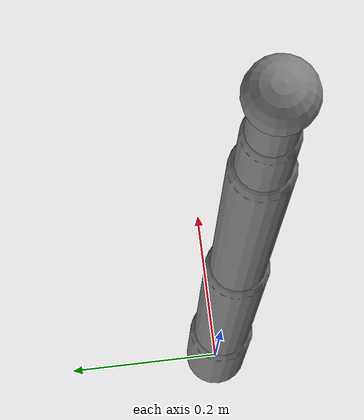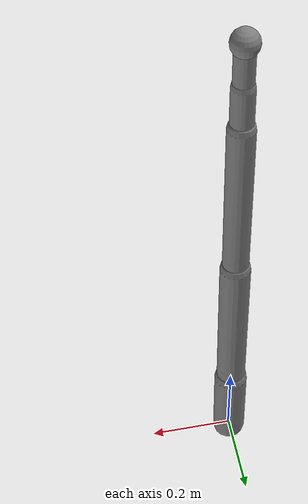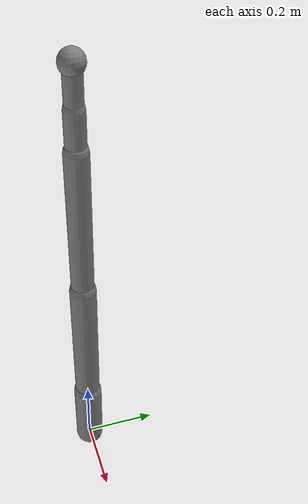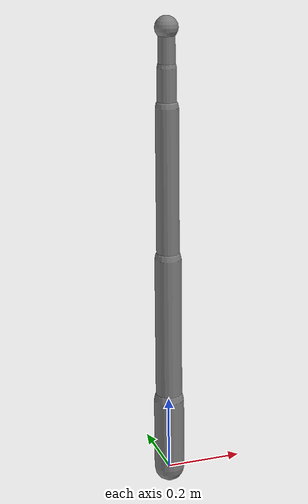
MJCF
<mujoco model="htdp_arm6">
  <option timestep="0.01"/>
  <worldbody>
    <body name="link0">
      <joint name="j0" type="hinge" axis="0 0 1"/>
      <geom type="capsule" fromto="0 0 0 0 0 0.2" size="0.04"/>
      <body name="link1" pos="0 0 0.2">
        <joint name="j1" type="hinge" axis="0 1 0"/>
        <geom type="capsule" fromto="0 0 0 0 0 0.4" size="0.035"/>
        <body name="link2" pos="0 0 0.4">
          <joint name="j2" type="hinge" axis="0 1 0"/>
          <geom type="capsule" fromto="0 0 0 0 0 0.4" size="0.03"/>
          <body name="link3" pos="0 0 0.4">
            <joint name="j3" type="hinge" axis="0 0 1"/>
            <geom type="capsule" fromto="0 0 0 0 0 0.1" size="0.025"/>
            <body name="link4" pos="0 0 0.1">
              <joint name="j4" type="hinge" axis="0 1 0"/>
              <geom type="capsule" fromto="0 0 0 0 0 0.1" size="0.022"/>
              <body name="eef" pos="0 0 0.1">
                <joint name="j5" type="hinge" axis="1 0 0"/>
                <geom type="sphere" size="0.03"/>
              </body>
            </body>
          </body>
        </body>
      </body>
    </body>
  </worldbody>
</mujoco>
